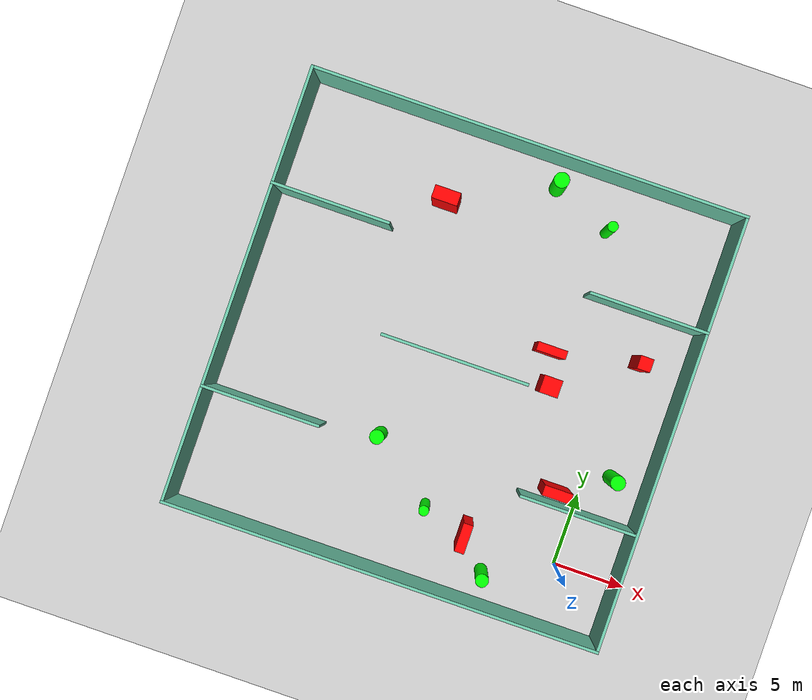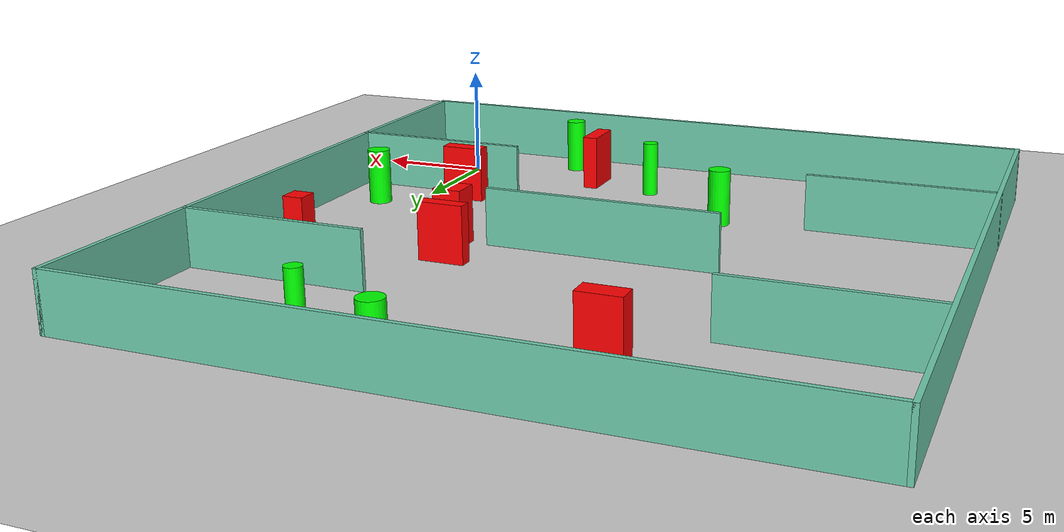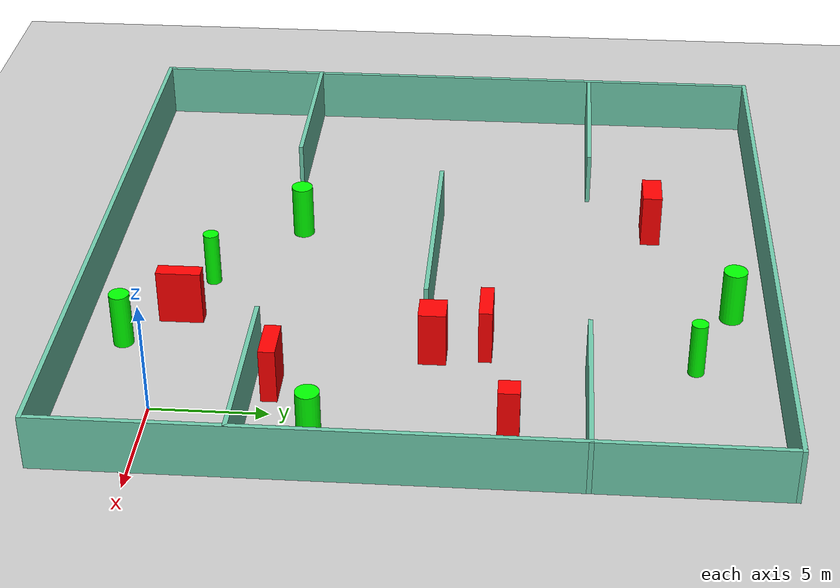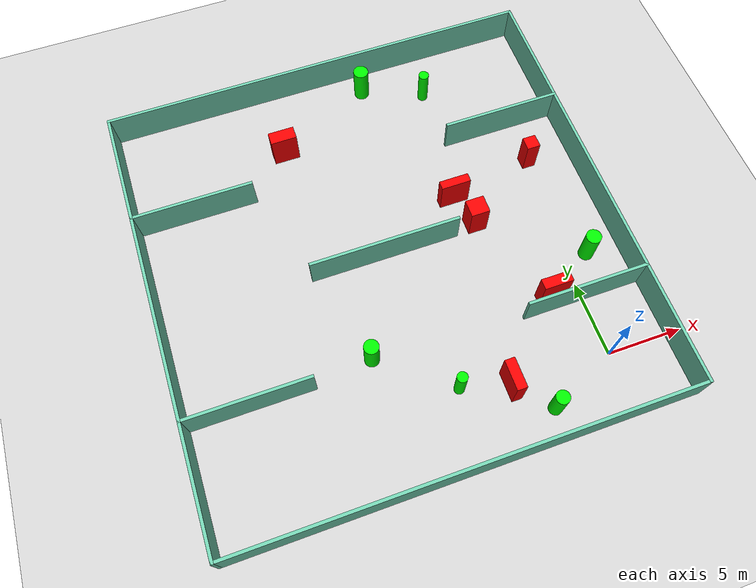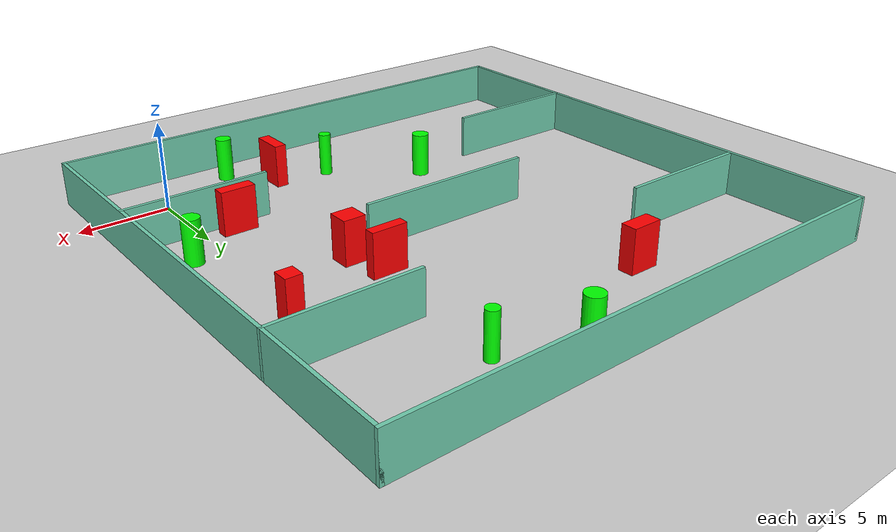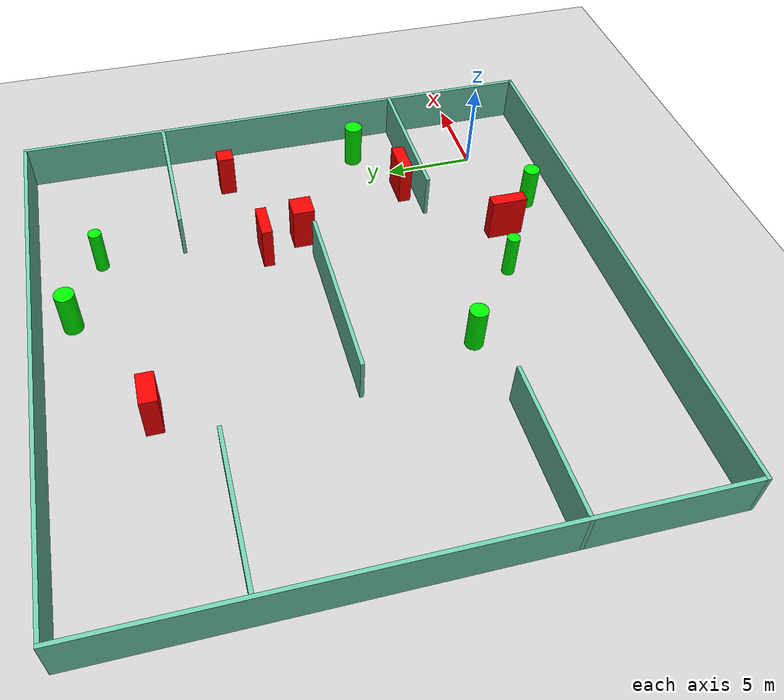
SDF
<sdf version="1.7">
 <world name="default">
  <light name="sun" type="directional">
   <pose>0 0 10 0 -0 0</pose>
   <diffuse>0.8 0.8 0.8 1</diffuse>
   <specular>0.2 0.2 0.2 1</specular>
   <attenuation>
    <range>1000</range>
    <constant>0.9</constant>
    <linear>0.01</linear>
    <quadratic>0.001</quadratic>
   </attenuation>
   <direction>-0.5 0.1 -0.9</direction>
   <spot><inner_angle>0</inner_angle><outer_angle>0</outer_angle><falloff>0</falloff></spot>
  </light>
  <model name="ground_plane">
   <static>1</static>
   <link name="link">
    <collision name="collision">
     <geometry><plane><normal>0 0 1</normal><size>100 100</size></plane></geometry>
     <surface>
      <contact><collide_bitmask>65535</collide_bitmask></contact>
      <friction><ode><mu>100</mu><mu2>50</mu2></ode></friction>
     </surface>
    </collision>
    <visual name="visual">
     <cast_shadows>0</cast_shadows>
     <geometry><plane><normal>0 0 1</normal><size>100 100</size></plane></geometry>
     <material>
      <script><uri>file://media/materials/scripts/gazebo.material</uri><name>Gazebo/Grey</name></script>
     </material>
    </visual>
   </link>
  </model>
  <gravity>0 0 -9.8</gravity>
  <magnetic_field>6e-06 2.3e-05 -4.2e-05</magnetic_field>
  <atmosphere type="adiabatic"/>
  <physics type="ode">
   <max_step_size>0.001</max_step_size>
   <real_time_factor>1</real_time_factor>
   <real_time_update_rate>1000</real_time_update_rate>
  </physics>
  <scene><ambient>0.4 0.4 0.4 1</ambient><background>0.7 0.7 0.7 1</background><shadows>1</shadows></scene>
  <spherical_coordinates>
   <surface_model>EARTH_WGS84</surface_model>
   <latitude_deg>0</latitude_deg>
   <longitude_deg>0</longitude_deg>
   <elevation>0</elevation>
   <heading_deg>0</heading_deg>
  </spherical_coordinates>
  <model name="my_base_walls">
   <link name="Wall_10">
    <collision name="Wall_10_Collision">
     <geometry><box><size>8.2 0.2 2.5</size></box></geometry>
     <pose>0 0 1.25 0 -0 0</pose>
    </collision>
    <visual name="Wall_10_Visual">
     <pose>0 0 1.25 0 -0 0</pose>
     <geometry><box><size>8.2 0.2 2.5</size></box></geometry>
     <material>
      <script><uri>file://media/materials/scripts/gazebo.material</uri><name>Gazebo/Grey</name></script>
      <ambient>0.435294 0.796078 0.67451 1</ambient>
     </material>
     <meta><layer>0</layer></meta>
    </visual>
    <pose>-11 -7 0 0 -0 0</pose>
   </link>
   <link name="Wall_12">
    <collision name="Wall_12_Collision">
     <geometry><box><size>8.2 0.2 2.5</size></box></geometry>
     <pose>0 0 1.25 0 -0 0</pose>
    </collision>
    <visual name="Wall_12_Visual">
     <pose>0 0 1.25 0 -0 0</pose>
     <geometry><box><size>8.2 0.2 2.5</size></box></geometry>
     <material>
      <script><uri>file://media/materials/scripts/gazebo.material</uri><name>Gazebo/Grey</name></script>
      <ambient>0.435294 0.796078 0.67451 1</ambient>
     </material>
     <meta><layer>0</layer></meta>
    </visual>
    <pose>-11 7 0 0 -0 0</pose>
   </link>
   <link name="Wall_14">
    <collision name="Wall_14_Collision">
     <geometry><box><size>8.2 0.2 2.5</size></box></geometry>
     <pose>0 0 1.25 0 -0 0</pose>
    </collision>
    <visual name="Wall_14_Visual">
     <pose>0 0 1.25 0 -0 0</pose>
     <geometry><box><size>8.2 0.2 2.5</size></box></geometry>
     <material>
      <script><uri>file://media/materials/scripts/gazebo.material</uri><name>Gazebo/Grey</name></script>
      <ambient>0.435294 0.796078 0.67451 1</ambient>
     </material>
     <meta><layer>0</layer></meta>
    </visual>
    <pose>11 7 0 0 -0 3.14159</pose>
   </link>
   <link name="Wall_16">
    <collision name="Wall_16_Collision">
     <geometry><box><size>10.2 0.2 2.5</size></box></geometry>
     <pose>0 0 1.25 0 -0 0</pose>
    </collision>
    <visual name="Wall_16_Visual">
     <pose>0 0 1.25 0 -0 0</pose>
     <geometry><box><size>10.2 0.2 2.5</size></box></geometry>
     <material>
      <script><uri>file://media/materials/scripts/gazebo.material</uri><name>Gazebo/Grey</name></script>
      <ambient>0.435294 0.796078 0.67451 1</ambient>
     </material>
     <meta><layer>0</layer></meta>
    </visual>
    <pose>0 0 0 0 -0 3.14159</pose>
   </link>
   <link name="Wall_2">
    <collision name="Wall_2_Collision">
     <geometry><box><size>30.2 0.2 2.5</size></box></geometry>
     <pose>0 0 1.25 0 -0 0</pose>
    </collision>
    <visual name="Wall_2_Visual">
     <pose>0 0 1.25 0 -0 0</pose>
     <geometry><box><size>30.2 0.2 2.5</size></box></geometry>
     <material>
      <script><uri>file://media/materials/scripts/gazebo.material</uri><name>Gazebo/Grey</name></script>
      <ambient>0.435294 0.796078 0.67451 1</ambient>
     </material>
     <meta><layer>0</layer></meta>
    </visual>
    <pose>0 -15 0 0 -0 3.14159</pose>
   </link>
   <link name="Wall_3">
    <collision name="Wall_3_Collision">
     <geometry><box><size>30.2 0.2 2.5</size></box></geometry>
     <pose>0 0 1.25 0 -0 0</pose>
    </collision>
    <visual name="Wall_3_Visual">
     <pose>0 0 1.25 0 -0 0</pose>
     <geometry><box><size>30.2 0.2 2.5</size></box></geometry>
     <material>
      <script><uri>file://media/materials/scripts/gazebo.material</uri><name>Gazebo/Grey</name></script>
      <ambient>0.435294 0.796078 0.67451 1</ambient>
     </material>
     <meta><layer>0</layer></meta>
    </visual>
    <pose>-15 0 0 0 -0 1.5708</pose>
   </link>
   <link name="Wall_4">
    <collision name="Wall_4_Collision">
     <geometry><box><size>30.2 0.2 2.5</size></box></geometry>
     <pose>0 0 1.25 0 -0 0</pose>
    </collision>
    <visual name="Wall_4_Visual">
     <pose>0 0 1.25 0 -0 0</pose>
     <geometry><box><size>30.2 0.2 2.5</size></box></geometry>
     <material>
      <script><uri>file://media/materials/scripts/gazebo.material</uri><name>Gazebo/Grey</name></script>
      <ambient>0.435294 0.796078 0.67451 1</ambient>
     </material>
     <meta><layer>0</layer></meta>
    </visual>
    <pose>0 15 0 0 -0 0</pose>
   </link>
   <link name="Wall_6">
    <collision name="Wall_6_Collision">
     <geometry><box><size>30.2 0.2 2.5</size></box></geometry>
     <pose>0 0 1.25 0 -0 0</pose>
    </collision>
    <visual name="Wall_6_Visual">
     <pose>0 0 1.25 0 -0 0</pose>
     <geometry><box><size>30.2 0.2 2.5</size></box></geometry>
     <material>
      <script><uri>file://media/materials/scripts/gazebo.material</uri><name>Gazebo/Grey</name></script>
      <ambient>0.435294 0.796078 0.67451 1</ambient>
     </material>
     <meta><layer>0</layer></meta>
    </visual>
    <pose>15 0 0 0 -0 1.5708</pose>
   </link>
   <link name="Wall_8">
    <collision name="Wall_8_Collision">
     <geometry><box><size>8.2 0.2 2.5</size></box></geometry>
     <pose>0 0 1.25 0 -0 0</pose>
    </collision>
    <visual name="Wall_8_Visual">
     <pose>0 0 1.25 0 -0 0</pose>
     <geometry><box><size>8.2 0.2 2.5</size></box></geometry>
     <material>
      <script><uri>file://media/materials/scripts/gazebo.material</uri><name>Gazebo/Grey</name></script>
      <ambient>0.435294 0.796078 0.67451 1</ambient>
     </material>
     <meta><layer>0</layer></meta>
    </visual>
    <pose>11 -7 0 0 -0 3.14159</pose>
   </link>
   <static>1</static>
   <pose>-11 11 0 0 -0 0</pose>
  </model>
  <model name="cylinder1">
   <static>1</static>
   <link name="link">
    <inertial>
     <mass>1</mass>
     <inertia><ixx>0.5</ixx><ixy>0</ixy><ixz>0</ixz><iyy>0.5</iyy><iyz>0</iyz><izz>1</izz></inertia>
    </inertial>
    <collision name="collision">
     <geometry><cylinder><radius>0.5237955505826455</radius><length>2.5</length></cylinder></geometry>
    </collision>
    <visual name="visual">
     <geometry><cylinder><radius>0.5237955505826455</radius><length>2.5</length></cylinder></geometry>
     <material>
      <ambient>0 1 0 1</ambient>
      <diffuse>0 1 0 1</diffuse>
      <specular>0.1 0.1 0.1 1</specular>
      <emissive>0 0 0 0</emissive>
     </material>
    </visual>
   </link>
   <pose>-8.230682510530382 24.308015885075857 1.25 0 0 0</pose>
  </model>
  <model name="cylinder2">
   <static>1</static>
   <link name="link">
    <inertial>
     <mass>1</mass>
     <inertia><ixx>0.5</ixx><ixy>0</ixy><ixz>0</ixz><iyy>0.5</iyy><iyz>0</iyz><izz>1</izz></inertia>
    </inertial>
    <collision name="collision">
     <geometry><cylinder><radius>0.3534945182638077</radius><length>2.5</length></cylinder></geometry>
    </collision>
    <visual name="visual">
     <geometry><cylinder><radius>0.3534945182638077</radius><length>2.5</length></cylinder></geometry>
     <material>
      <ambient>0 1 0 1</ambient>
      <diffuse>0 1 0 1</diffuse>
      <specular>0.1 0.1 0.1 1</specular>
      <emissive>0 0 0 0</emissive>
     </material>
    </visual>
   </link>
   <pose>-4.093795888742438 22.540259710257835 1.25 0 0 0</pose>
  </model>
  <model name="cylinder3">
   <static>1</static>
   <link name="link">
    <inertial>
     <mass>1</mass>
     <inertia><ixx>0.5</ixx><ixy>0</ixy><ixz>0</ixz><iyy>0.5</iyy><iyz>0</iyz><izz>1</izz></inertia>
    </inertial>
    <collision name="collision">
     <geometry><cylinder><radius>0.5032078128021722</radius><length>2.5</length></cylinder></geometry>
    </collision>
    <visual name="visual">
     <geometry><cylinder><radius>0.5032078128021722</radius><length>2.5</length></cylinder></geometry>
     <material>
      <ambient>0 1 0 1</ambient>
      <diffuse>0 1 0 1</diffuse>
      <specular>0.1 0.1 0.1 1</specular>
      <emissive>0 0 0 0</emissive>
     </material>
    </visual>
   </link>
   <pose>1.6818413875744547 6.865249332906835 1.25 0 0 0</pose>
  </model>
  <model name="cylinder4">
   <static>1</static>
   <link name="link">
    <inertial>
     <mass>1</mass>
     <inertia><ixx>0.5</ixx><ixy>0</ixy><ixz>0</ixz><iyy>0.5</iyy><iyz>0</iyz><izz>1</izz></inertia>
    </inertial>
    <collision name="collision">
     <geometry><cylinder><radius>0.48466848975522764</radius><length>2.5</length></cylinder></geometry>
    </collision>
    <visual name="visual">
     <geometry><cylinder><radius>0.48466848975522764</radius><length>2.5</length></cylinder></geometry>
     <material>
      <ambient>0 1 0 1</ambient>
      <diffuse>0 1 0 1</diffuse>
      <specular>0.1 0.1 0.1 1</specular>
      <emissive>0 0 0 0</emissive>
     </material>
    </visual>
   </link>
   <pose>-14.141360884774505 4.570508616088523 1.25 0 0 0</pose>
  </model>
  <model name="cylinder5">
   <static>1</static>
   <link name="link">
    <inertial>
     <mass>1</mass>
     <inertia><ixx>0.5</ixx><ixy>0</ixy><ixz>0</ixz><iyy>0.5</iyy><iyz>0</iyz><izz>1</izz></inertia>
    </inertial>
    <collision name="collision">
     <geometry><cylinder><radius>0.3463643950323585</radius><length>2.5</length></cylinder></geometry>
    </collision>
    <visual name="visual">
     <geometry><cylinder><radius>0.3463643950323585</radius><length>2.5</length></cylinder></geometry>
     <material>
      <ambient>0 1 0 1</ambient>
      <diffuse>0 1 0 1</diffuse>
      <specular>0.1 0.1 0.1 1</specular>
      <emissive>0 0 0 0</emissive>
     </material>
    </visual>
   </link>
   <pose>-9.68192576399692 1.0323437114762903 1.25 0 0 0</pose>
  </model>
  <model name="cylinder6">
   <static>1</static>
   <link name="link">
    <inertial>
     <mass>1</mass>
     <inertia><ixx>0.5</ixx><ixy>0</ixy><ixz>0</ixz><iyy>0.5</iyy><iyz>0</iyz><izz>1</izz></inertia>
    </inertial>
    <collision name="collision">
     <geometry><cylinder><radius>0.44494641060422985</radius><length>2.5</length></cylinder></geometry>
    </collision>
    <visual name="visual">
     <geometry><cylinder><radius>0.44494641060422985</radius><length>2.5</length></cylinder></geometry>
     <material>
      <ambient>0 1 0 1</ambient>
      <diffuse>0 1 0 1</diffuse>
      <specular>0.1 0.1 0.1 1</specular>
      <emissive>0 0 0 0</emissive>
     </material>
    </visual>
   </link>
   <pose>-4.613812363448908 -2.0235723230413005 1.25 0 0 0</pose>
  </model>
  <model name="box1">
   <static>1</static>
   <link name="link">
    <inertial>
     <mass>1</mass>
     <inertia><ixx>0.083</ixx><ixy>0</ixy><ixz>0</ixz><iyy>0.083</iyy><iyz>0</iyz><izz>0.083</izz></inertia>
    </inertial>
    <collision name="collision">
     <geometry><box><size>1.9366684004170622 0.6999798908221094 2.5</size></box></geometry>
    </collision>
    <visual name="visual">
     <geometry><box><size>1.9366684004170622 0.6999798908221094 2.5</size></box></geometry>
     <material>
      <ambient>1 0 0 1</ambient>
      <diffuse>1 0 0 1</diffuse>
      <specular>0.1 0.1 0.1 1</specular>
      <emissive>0 0 0 0</emissive>
     </material>
    </visual>
    <sensor name="my_contact" type="contact">
     <contact><collision>box_collision</collision><topic>__default_topic__</topic></contact>
    </sensor>
   </link>
   <pose>-1.7926523967185837 4.867032799768358 1.25 0 0 0</pose>
  </model>
  <model name="box2">
   <static>1</static>
   <link name="link">
    <inertial>
     <mass>1</mass>
     <inertia><ixx>0.083</ixx><ixy>0</ixy><ixz>0</ixz><iyy>0.083</iyy><iyz>0</iyz><izz>0.083</izz></inertia>
    </inertial>
    <collision name="collision">
     <geometry><box><size>0.6726087797802707 1.9586276051414058 2.5</size></box></geometry>
    </collision>
    <visual name="visual">
     <geometry><box><size>0.6726087797802707 1.9586276051414058 2.5</size></box></geometry>
     <material>
      <ambient>1 0 0 1</ambient>
      <diffuse>1 0 0 1</diffuse>
      <specular>0.1 0.1 0.1 1</specular>
      <emissive>0 0 0 0</emissive>
     </material>
    </visual>
    <sensor name="my_contact" type="contact">
     <contact><collision>box_collision</collision><topic>__default_topic__</topic></contact>
    </sensor>
   </link>
   <pose>-6.62860653796362 0.1780475802371977 1.25 0 0 0</pose>
  </model>
  <model name="box3">
   <static>1</static>
   <link name="link">
    <inertial>
     <mass>1</mass>
     <inertia><ixx>0.083</ixx><ixy>0</ixy><ixz>0</ixz><iyy>0.083</iyy><iyz>0</iyz><izz>0.083</izz></inertia>
    </inertial>
    <collision name="collision">
     <geometry><box><size>2.0193206505435874 0.5851442500646071 2.5</size></box></geometry>
    </collision>
    <visual name="visual">
     <geometry><box><size>2.0193206505435874 0.5851442500646071 2.5</size></box></geometry>
     <material>
      <ambient>1 0 0 1</ambient>
      <diffuse>1 0 0 1</diffuse>
      <specular>0.1 0.1 0.1 1</specular>
      <emissive>0 0 0 0</emissive>
     </material>
    </visual>
    <sensor name="my_contact" type="contact">
     <contact><collision>box_collision</collision><topic>__default_topic__</topic></contact>
    </sensor>
   </link>
   <pose>-5.2019813998350415 13.621370281190682 1.25 0 0 0</pose>
  </model>
  <model name="box4">
   <static>1</static>
   <link name="link">
    <inertial>
     <mass>1</mass>
     <inertia><ixx>0.083</ixx><ixy>0</ixy><ixz>0</ixz><iyy>0.083</iyy><iyz>0</iyz><izz>0.083</izz></inertia>
    </inertial>
    <collision name="collision">
     <geometry><box><size>0.9021767937021701 0.900842087118635 2.5</size></box></geometry>
    </collision>
    <visual name="visual">
     <geometry><box><size>0.9021767937021701 0.900842087118635 2.5</size></box></geometry>
     <material>
      <ambient>1 0 0 1</ambient>
      <diffuse>1 0 0 1</diffuse>
      <specular>0.1 0.1 0.1 1</specular>
      <emissive>0 0 0 0</emissive>
     </material>
    </visual>
    <sensor name="my_contact" type="contact">
     <contact><collision>box_collision</collision><topic>__default_topic__</topic></contact>
    </sensor>
   </link>
   <pose>0.8338950881966163 14.786527122232911 1.25 0 0 0</pose>
  </model>
  <model name="box5">
   <static>1</static>
   <link name="link">
    <inertial>
     <mass>1</mass>
     <inertia><ixx>0.083</ixx><ixy>0</ixy><ixz>0</ixz><iyy>0.083</iyy><iyz>0</iyz><izz>0.083</izz></inertia>
    </inertial>
    <collision name="collision">
     <geometry><box><size>1.7766498093431327 0.8890528756514746 2.5</size></box></geometry>
    </collision>
    <visual name="visual">
     <geometry><box><size>1.7766498093431327 0.8890528756514746 2.5</size></box></geometry>
     <material>
      <ambient>1 0 0 1</ambient>
      <diffuse>1 0 0 1</diffuse>
      <specular>0.1 0.1 0.1 1</specular>
      <emissive>0 0 0 0</emissive>
     </material>
    </visual>
    <sensor name="my_contact" type="contact">
     <contact><collision>box_collision</collision><topic>__default_topic__</topic></contact>
    </sensor>
   </link>
   <pose>-15.016772821881553 20.91602449061719 1.25 0 0 0</pose>
  </model>
  <model name="box6">
   <static>1</static>
   <link name="link">
    <inertial>
     <mass>1</mass>
     <inertia><ixx>0.083</ixx><ixy>0</ixy><ixz>0</ixz><iyy>0.083</iyy><iyz>0</iyz><izz>0.083</izz></inertia>
    </inertial>
    <collision name="collision">
     <geometry><box><size>1.2624220439876979 1.1887457894528153 2.5</size></box></geometry>
    </collision>
    <visual name="visual">
     <geometry><box><size>1.2624220439876979 1.1887457894528153 2.5</size></box></geometry>
     <material>
      <ambient>1 0 0 1</ambient>
      <diffuse>1 0 0 1</diffuse>
      <specular>0.1 0.1 0.1 1</specular>
      <emissive>0 0 0 0</emissive>
     </material>
    </visual>
    <sensor name="my_contact" type="contact">
     <contact><collision>box_collision</collision><topic>__default_topic__</topic></contact>
    </sensor>
   </link>
   <pose>-4.497586119733381 11.386272785859731 1.25 0 0 0</pose>
  </model>
 </world>
</sdf>
